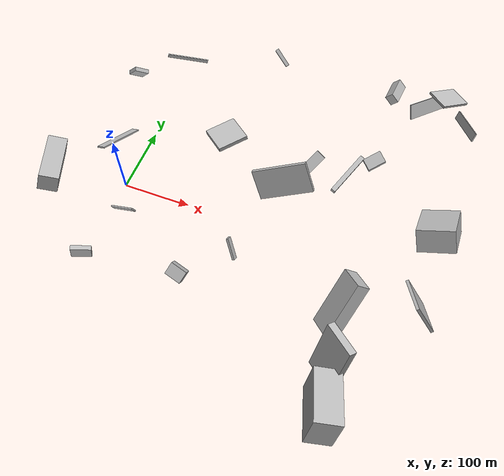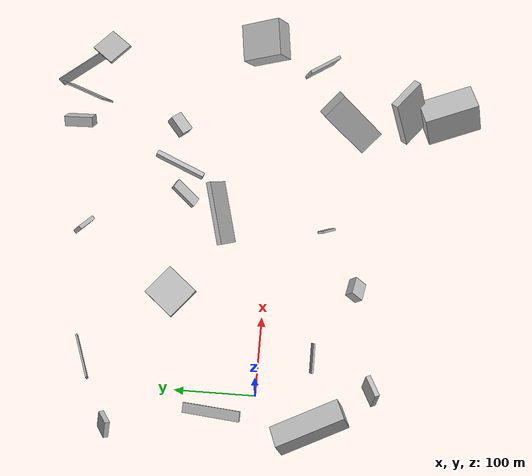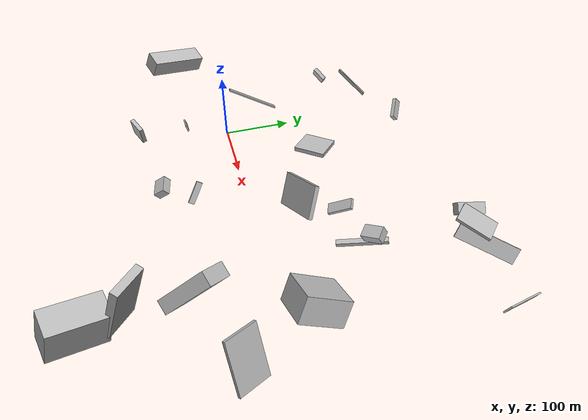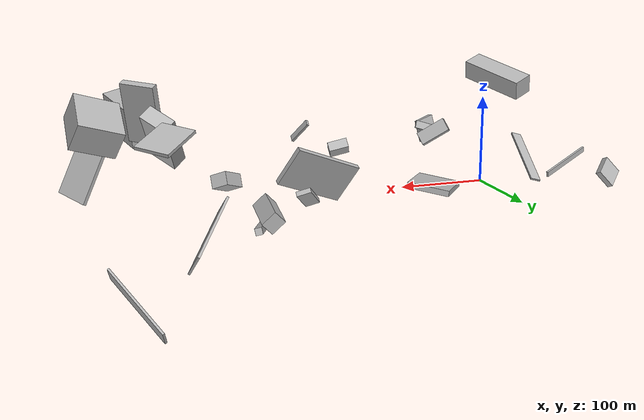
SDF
<sdf version="1.6">
 <world name="default">
  <scene>
   <sky><clouds><speed>12</speed></clouds></sky>
   <ambient>0.4 0.4 0.4 1</ambient>
   <background>0.7 0.7 0.7 1</background>
   <shadows>1</shadows>
  </scene>
  <gravity>0 0 -9.8066</gravity>
  <magnetic_field>6e-06 2.3e-05 -4.2e-05</magnetic_field>
  <physics default="0" name="default_physics" type="ode">
   <ode>
    <solver>
     <type>quick</type>
     <iters>10</iters>
     <sor>1.0</sor>
     <use_dynamic_moi_rescaling>0</use_dynamic_moi_rescaling>
    </solver>
    <constraints>
     <cfm>0</cfm>
     <erp>0.2</erp>
     <contact_max_correcting_vel>100</contact_max_correcting_vel>
     <contact_surface_layer>0.001</contact_surface_layer>
    </constraints>
   </ode>
   <max_step_size>0.004</max_step_size>
   <real_time_factor>1</real_time_factor>
   <real_time_update_rate>250</real_time_update_rate>
  </physics>
  <light name="sun" type="directional">
   <pose>0 0 10 0 0 0</pose>
   <diffuse>0.8 0.8 0.8 1</diffuse>
   <specular>0.2 0.2 0.2 1</specular>
   <attenuation>
    <range>1000</range>
    <constant>0.9</constant>
    <linear>0.01</linear>
    <quadratic>0.001</quadratic>
   </attenuation>
   <direction>-0.5 0.1 -0.9</direction>
  </light>
  <model name="building_1">
   <static>0</static>
   <pose>343.6396447891867 134.8822593620694 64.104666437378 -1.9152892145948024 -0.3552895678316028 2.436822335375032</pose>
   <link name="link">
    <gravity>0</gravity>
    <pose>0 0 13.0 0 0 0</pose>
    <collision name="collision"><geometry><box><size>17 13 26</size></box></geometry></collision>
    <visual name="visual">
     <cast_shadows>0</cast_shadows>
     <geometry><box><size>17 13 26</size></box></geometry>
     <material>
      <script>
       <uri>model://HANNAS_wall/materials/scripts</uri>
       <uri>model://HANNAS_wall/materials/textures</uri>
       <name>vrc/HANNAS_wall</name>
      </script>
     </material>
    </visual>
   </link>
  </model>
  <model name="building_2">
   <static>0</static>
   <pose>153.34505836967628 221.25696965422634 121.16423819361106 2.52589642861699 0.8477381905869253 1.9111092278628474</pose>
   <link name="link">
    <gravity>0</gravity>
    <pose>0 0 13.5 0 0 0</pose>
    <collision name="collision"><geometry><box><size>12 5 27</size></box></geometry></collision>
    <visual name="visual">
     <cast_shadows>0</cast_shadows>
     <geometry><box><size>12 5 27</size></box></geometry>
     <material>
      <script>
       <uri>model://HANNAS_wall/materials/scripts</uri>
       <uri>model://HANNAS_wall/materials/textures</uri>
       <name>vrc/HANNAS_wall</name>
      </script>
     </material>
    </visual>
   </link>
  </model>
  <model name="building_3">
   <static>0</static>
   <pose>452.38923666102966 -54.03970860737411 38.55834752664824 1.9906309174340162 -0.14574399827181314 -1.025689674480667</pose>
   <link name="link">
    <gravity>0</gravity>
    <pose>0 0 2.0 0 0 0</pose>
    <collision name="collision"><geometry><box><size>44 69 4</size></box></geometry></collision>
    <visual name="visual">
     <cast_shadows>0</cast_shadows>
     <geometry><box><size>44 69 4</size></box></geometry>
     <material>
      <script>
       <uri>model://HANNAS_wall/materials/scripts</uri>
       <uri>model://HANNAS_wall/materials/textures</uri>
       <name>vrc/HANNAS_wall</name>
      </script>
     </material>
    </visual>
   </link>
  </model>
  <model name="building_4">
   <static>0</static>
   <pose>458.55580006886987 246.85609071164976 25.088196878369473 2.0382375433097946 -0.39209953646548745 -2.878669029226775</pose>
   <link name="link">
    <gravity>0</gravity>
    <pose>0 0 40.0 0 0 0</pose>
    <collision name="collision"><geometry><box><size>2 13 80</size></box></geometry></collision>
    <visual name="visual">
     <cast_shadows>0</cast_shadows>
     <geometry><box><size>2 13 80</size></box></geometry>
     <material>
      <script>
       <uri>model://HANNAS_wall/materials/scripts</uri>
       <uri>model://HANNAS_wall/materials/textures</uri>
       <name>vrc/HANNAS_wall</name>
      </script>
     </material>
    </visual>
   </link>
  </model>
  <model name="building_5">
   <static>0</static>
   <pose>312.2179304295293 158.10400247495056 17.5202823127736 -1.7476441573395398 -0.22761214730375048 2.820997856297796</pose>
   <link name="link">
    <gravity>0</gravity>
    <pose>0 0 34.5 0 0 0</pose>
    <collision name="collision"><geometry><box><size>7 7 69</size></box></geometry></collision>
    <visual name="visual">
     <cast_shadows>0</cast_shadows>
     <geometry><box><size>7 7 69</size></box></geometry>
     <material>
      <script>
       <uri>model://HANNAS_wall/materials/scripts</uri>
       <uri>model://HANNAS_wall/materials/textures</uri>
       <name>vrc/HANNAS_wall</name>
      </script>
     </material>
    </visual>
   </link>
  </model>
  <model name="building_6">
   <static>0</static>
   <pose>137.6709091644936 -110.68434638657783 20.781630276142195 0.2963622185053914 -0.6360236279978757 1.1807944844067884</pose>
   <link name="link">
    <gravity>0</gravity>
    <pose>0 0 6.0 0 0 0</pose>
    <collision name="collision"><geometry><box><size>18 24 12</size></box></geometry></collision>
    <visual name="visual">
     <cast_shadows>0</cast_shadows>
     <geometry><box><size>18 24 12</size></box></geometry>
     <material>
      <script>
       <uri>model://HANNAS_wall/materials/scripts</uri>
       <uri>model://HANNAS_wall/materials/textures</uri>
       <name>vrc/HANNAS_wall</name>
      </script>
     </material>
    </visual>
   </link>
  </model>
  <model name="building_7">
   <static>0</static>
   <pose>39.23380150207778 -65.42640920371619 53.759583340813215 0.8137218019666399 -1.13296952093272 -2.335071882552826</pose>
   <link name="link">
    <gravity>0</gravity>
    <pose>0 0 1.0 0 0 0</pose>
    <collision name="collision"><geometry><box><size>9 35 2</size></box></geometry></collision>
    <visual name="visual">
     <cast_shadows>0</cast_shadows>
     <geometry><box><size>9 35 2</size></box></geometry>
     <material>
      <script>
       <uri>model://HANNAS_wall/materials/scripts</uri>
       <uri>model://HANNAS_wall/materials/textures</uri>
       <name>vrc/HANNAS_wall</name>
      </script>
     </material>
    </visual>
   </link>
  </model>
  <model name="building_8">
   <static>0</static>
   <pose>372.07566972280097 -168.27945671336093 71.09484041295256 1.2553959133680503 -0.07204621729597988 -0.6755975237055344</pose>
   <link name="link">
    <gravity>0</gravity>
    <pose>0 0 5.0 0 0 0</pose>
    <collision name="collision"><geometry><box><size>45 80 10</size></box></geometry></collision>
    <visual name="visual">
     <cast_shadows>0</cast_shadows>
     <geometry><box><size>45 80 10</size></box></geometry>
     <material>
      <script>
       <uri>model://HANNAS_wall/materials/scripts</uri>
       <uri>model://HANNAS_wall/materials/textures</uri>
       <name>vrc/HANNAS_wall</name>
      </script>
     </material>
    </visual>
   </link>
  </model>
  <model name="building_9">
   <static>0</static>
   <pose>-30.44370770924735 50.358415142431475 39.14368178563088 2.64468143856249 -0.2866310740609985 -0.029637167532753392</pose>
   <link name="link">
    <gravity>0</gravity>
    <pose>0 0 1.0 0 0 0</pose>
    <collision name="collision"><geometry><box><size>12 80 2</size></box></geometry></collision>
    <visual name="visual">
     <cast_shadows>0</cast_shadows>
     <geometry><box><size>12 80 2</size></box></geometry>
     <material>
      <script>
       <uri>model://HANNAS_wall/materials/scripts</uri>
       <uri>model://HANNAS_wall/materials/textures</uri>
       <name>vrc/HANNAS_wall</name>
      </script>
     </material>
    </visual>
   </link>
  </model>
  <model name="building_10">
   <static>0</static>
   <pose>258.1048014546112 72.33379040247854 55.96130620614572 -2.303865158870097 -0.9916472043641044 2.4859164534602662</pose>
   <link name="link">
    <gravity>0</gravity>
    <pose>0 0 40.0 0 0 0</pose>
    <collision name="collision"><geometry><box><size>45 6 80</size></box></geometry></collision>
    <visual name="visual">
     <cast_shadows>0</cast_shadows>
     <geometry><box><size>45 6 80</size></box></geometry>
     <material>
      <script>
       <uri>model://HANNAS_wall/materials/scripts</uri>
       <uri>model://HANNAS_wall/materials/textures</uri>
       <name>vrc/HANNAS_wall</name>
      </script>
     </material>
    </visual>
   </link>
  </model>
  <model name="building_11">
   <static>0</static>
   <pose>256.0062677694338 109.32910486459365 30.021327967352846 -1.1877270935297553 -0.5460483384702183 0.9861585571904227</pose>
   <link name="link">
    <gravity>0</gravity>
    <pose>0 0 7.5 0 0 0</pose>
    <collision name="collision"><geometry><box><size>37 5 15</size></box></geometry></collision>
    <visual name="visual">
     <cast_shadows>0</cast_shadows>
     <geometry><box><size>37 5 15</size></box></geometry>
     <material>
      <script>
       <uri>model://HANNAS_wall/materials/scripts</uri>
       <uri>model://HANNAS_wall/materials/textures</uri>
       <name>vrc/HANNAS_wall</name>
      </script>
     </material>
    </visual>
   </link>
  </model>
  <model name="building_12">
   <static>0</static>
   <pose>15.372981275631032 202.9861832716989 69.30408263357953 0.09409495971181446 -0.26337615483802823 -2.7300987279570856</pose>
   <link name="link">
    <gravity>0</gravity>
    <pose>0 0 2.5 0 0 0</pose>
    <collision name="collision"><geometry><box><size>60 2 5</size></box></geometry></collision>
    <visual name="visual">
     <cast_shadows>0</cast_shadows>
     <geometry><box><size>60 2 5</size></box></geometry>
     <material>
      <script>
       <uri>model://HANNAS_wall/materials/scripts</uri>
       <uri>model://HANNAS_wall/materials/textures</uri>
       <name>vrc/HANNAS_wall</name>
      </script>
     </material>
    </visual>
   </link>
  </model>
  <model name="building_13">
   <static>0</static>
   <pose>419.01511043431583 230.37192344534012 117.77743263760358 -0.37089173527902136 -1.2445057875145527 1.177149839518835</pose>
   <link name="link">
    <gravity>0</gravity>
    <pose>0 0 21.0 0 0 0</pose>
    <collision name="collision"><geometry><box><size>3 33 42</size></box></geometry></collision>
    <visual name="visual">
     <cast_shadows>0</cast_shadows>
     <geometry><box><size>3 33 42</size></box></geometry>
     <material>
      <script>
       <uri>model://HANNAS_wall/materials/scripts</uri>
       <uri>model://HANNAS_wall/materials/textures</uri>
       <name>vrc/HANNAS_wall</name>
      </script>
     </material>
    </visual>
   </link>
  </model>
  <model name="building_14">
   <static>0</static>
   <pose>378.2832910249902 257.2182768926118 52.05141654165474 -0.6229720978605935 0.9244691663798971 -1.0651252855285847</pose>
   <link name="link">
    <gravity>0</gravity>
    <pose>0 0 1.0 0 0 0</pose>
    <collision name="collision"><geometry><box><size>21 80 2</size></box></geometry></collision>
    <visual name="visual">
     <cast_shadows>0</cast_shadows>
     <geometry><box><size>21 80 2</size></box></geometry>
     <material>
      <script>
       <uri>model://HANNAS_wall/materials/scripts</uri>
       <uri>model://HANNAS_wall/materials/textures</uri>
       <name>vrc/HANNAS_wall</name>
      </script>
     </material>
    </visual>
   </link>
  </model>
  <model name="building_15">
   <static>0</static>
   <pose>368.6918045033365 -108.4627216382842 64.12136547409318 2.101699260690429 -0.6277319298428907 -2.7128605308946607</pose>
   <link name="link">
    <gravity>0</gravity>
    <pose>0 0 18.0 0 0 0</pose>
    <collision name="collision"><geometry><box><size>19 80 36</size></box></geometry></collision>
    <visual name="visual">
     <cast_shadows>0</cast_shadows>
     <geometry><box><size>19 80 36</size></box></geometry>
     <material>
      <script>
       <uri>model://HANNAS_wall/materials/scripts</uri>
       <uri>model://HANNAS_wall/materials/textures</uri>
       <name>vrc/HANNAS_wall</name>
      </script>
     </material>
    </visual>
   </link>
  </model>
  <model name="building_16">
   <static>0</static>
   <pose>360.4225964561562 -229.72098213549626 62.5484039453346 2.348288584869983 -1.2867089773927816 1.0890354844640704</pose>
   <link name="link">
    <gravity>0</gravity>
    <pose>0 0 17.5 0 0 0</pose>
    <collision name="collision"><geometry><box><size>50 70 35</size></box></geometry></collision>
    <visual name="visual">
     <cast_shadows>0</cast_shadows>
     <geometry><box><size>50 70 35</size></box></geometry>
     <material>
      <script>
       <uri>model://HANNAS_wall/materials/scripts</uri>
       <uri>model://HANNAS_wall/materials/textures</uri>
       <name>vrc/HANNAS_wall</name>
      </script>
     </material>
    </visual>
   </link>
  </model>
  <model name="building_17">
   <static>0</static>
   <pose>128.8481851813877 132.49075657159426 35.07462216374446 1.5969555969978644 -0.12282234552992825 -0.6925261061237307</pose>
   <link name="link">
    <gravity>0</gravity>
    <pose>0 0 23.0 0 0 0</pose>
    <collision name="collision"><geometry><box><size>44 6 46</size></box></geometry></collision>
    <visual name="visual">
     <cast_shadows>0</cast_shadows>
     <geometry><box><size>44 6 46</size></box></geometry>
     <material>
      <script>
       <uri>model://HANNAS_wall/materials/scripts</uri>
       <uri>model://HANNAS_wall/materials/textures</uri>
       <name>vrc/HANNAS_wall</name>
      </script>
     </material>
    </visual>
   </link>
  </model>
  <model name="building_18">
   <static>0</static>
   <pose>466.5751494506465 25.067410030089643 107.10983602459797 -1.903611737956472 0.4580405584179247 1.556867275730889</pose>
   <link name="link">
    <gravity>0</gravity>
    <pose>0 0 24.0 0 0 0</pose>
    <collision name="collision"><geometry><box><size>53 31 48</size></box></geometry></collision>
    <visual name="visual">
     <cast_shadows>0</cast_shadows>
     <geometry><box><size>53 31 48</size></box></geometry>
     <material>
      <script>
       <uri>model://HANNAS_wall/materials/scripts</uri>
       <uri>model://HANNAS_wall/materials/textures</uri>
       <name>vrc/HANNAS_wall</name>
      </script>
     </material>
    </visual>
   </link>
  </model>
  <model name="building_19">
   <static>0</static>
   <pose>-2.4338493411766837 -141.67044527943187 39.41273683663764 2.4226097254381824 1.3212238539420258 2.8415972809150776</pose>
   <link name="link">
    <gravity>0</gravity>
    <pose>0 0 13.5 0 0 0</pose>
    <collision name="collision"><geometry><box><size>28 6 27</size></box></geometry></collision>
    <visual name="visual">
     <cast_shadows>0</cast_shadows>
     <geometry><box><size>28 6 27</size></box></geometry>
     <material>
      <script>
       <uri>model://HANNAS_wall/materials/scripts</uri>
       <uri>model://HANNAS_wall/materials/textures</uri>
       <name>vrc/HANNAS_wall</name>
      </script>
     </material>
    </visual>
   </link>
  </model>
  <model name="building_20">
   <static>0</static>
   <pose>333.1639063334997 256.3699519881728 69.50432199738911 -2.924553961740411 -0.7523868395225632 2.9357135116053077</pose>
   <link name="link">
    <gravity>0</gravity>
    <pose>0 0 6.5 0 0 0</pose>
    <collision name="collision"><geometry><box><size>15 38 13</size></box></geometry></collision>
    <visual name="visual">
     <cast_shadows>0</cast_shadows>
     <geometry><box><size>15 38 13</size></box></geometry>
     <material>
      <script>
       <uri>model://HANNAS_wall/materials/scripts</uri>
       <uri>model://HANNAS_wall/materials/textures</uri>
       <name>vrc/HANNAS_wall</name>
      </script>
     </material>
    </visual>
   </link>
  </model>
  <model name="building_21">
   <static>0</static>
   <pose>-54.32739004277442 -67.50815360981146 101.85363375713511 -0.32550013548568646 -0.2304640862438912 -1.1412538410559792</pose>
   <link name="link">
    <gravity>0</gravity>
    <pose>0 0 11.5 0 0 0</pose>
    <collision name="collision"><geometry><box><size>80 25 23</size></box></geometry></collision>
    <visual name="visual">
     <cast_shadows>0</cast_shadows>
     <geometry><box><size>80 25 23</size></box></geometry>
     <material>
      <script>
       <uri>model://HANNAS_wall/materials/scripts</uri>
       <uri>model://HANNAS_wall/materials/textures</uri>
       <name>vrc/HANNAS_wall</name>
      </script>
     </material>
    </visual>
   </link>
  </model>
  <model name="building_22">
   <static>0</static>
   <pose>-56.629718917320645 173.96007027217757 48.403217022898296 2.090384554745549 0.5759847302641516 0.6556756653853995</pose>
   <link name="link">
    <gravity>0</gravity>
    <pose>0 0 3.0 0 0 0</pose>
    <collision name="collision"><geometry><box><size>22 21 6</size></box></geometry></collision>
    <visual name="visual">
     <cast_shadows>0</cast_shadows>
     <geometry><box><size>22 21 6</size></box></geometry>
     <material>
      <script>
       <uri>model://HANNAS_wall/materials/scripts</uri>
       <uri>model://HANNAS_wall/materials/textures</uri>
       <name>vrc/HANNAS_wall</name>
      </script>
     </material>
    </visual>
   </link>
  </model>
  <model name="building_23">
   <static>0</static>
   <pose>201.93909848149718 -72.24973304298703 59.918562184005005 -2.2318514220353993 -0.7999703216930832 2.308981786985324</pose>
   <link name="link">
    <gravity>0</gravity>
    <pose>0 0 1.5 0 0 0</pose>
    <collision name="collision"><geometry><box><size>30 8 3</size></box></geometry></collision>
    <visual name="visual">
     <cast_shadows>0</cast_shadows>
     <geometry><box><size>30 8 3</size></box></geometry>
     <material>
      <script>
       <uri>model://HANNAS_wall/materials/scripts</uri>
       <uri>model://HANNAS_wall/materials/textures</uri>
       <name>vrc/HANNAS_wall</name>
      </script>
     </material>
    </visual>
   </link>
  </model>
 </world>
</sdf>
